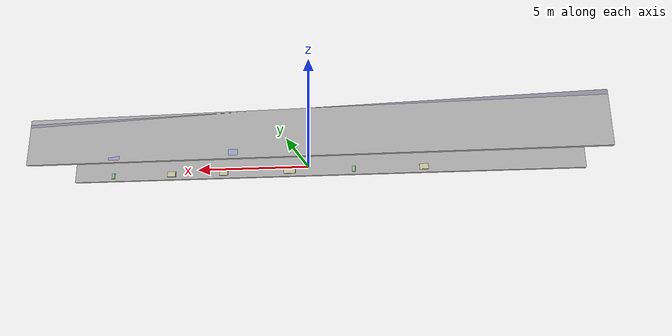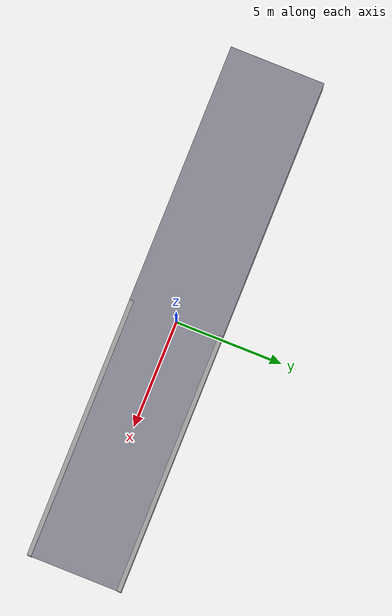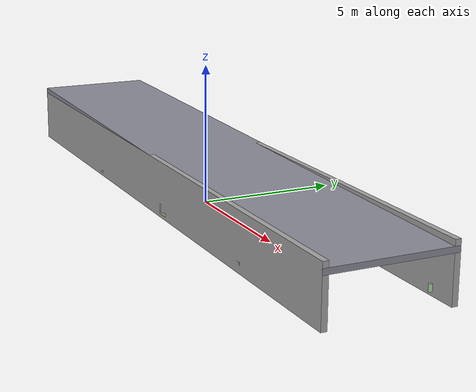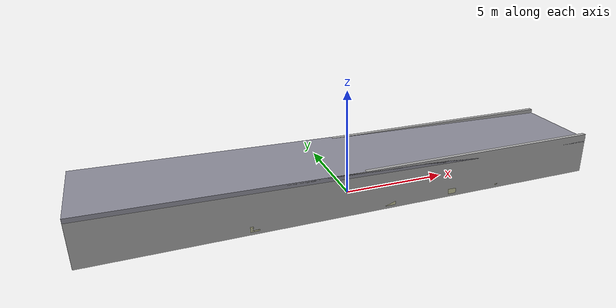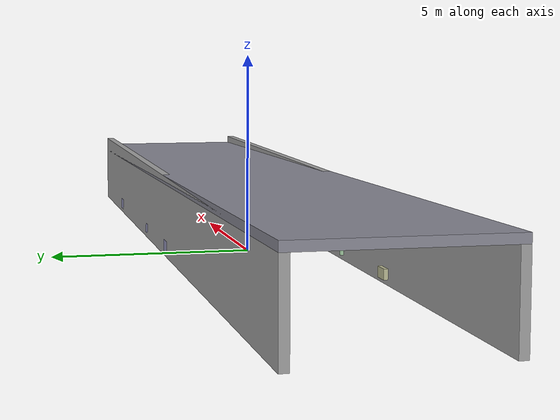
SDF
<?xml version="1.0"?>
<sdf version="1.7">
    <model name="culvert">
        <static>true</static>
        <link name="culvert_walls_link">
            <!-- 下侧墙（y < 0）：长 24m 沿 X，厚 0.2m 沿 Y，高 2m 沿 Z -->
            <collision name="lower_wall_collision">
                <pose>0 -2.1 1.0 0 0 0</pose>
                <geometry>
                    <box><size>24.0 0.2 2.0</size></box>
                </geometry>
            </collision>
            <visual name="lower_wall_visual">
                <pose>0 -2.1 1.0 0 0 0</pose>
                <geometry>
                    <box><size>24.0 0.2 2.0</size></box>
                </geometry>
                <material>
                    <ambient>0.35 0.35 0.35 1</ambient>
                    <diffuse>0.65 0.65 0.65 1</diffuse>
                </material>
            </visual>

            <!-- 上侧墙（y > 0）：与下侧墙对称，中间净宽 4m -->
            <collision name="upper_wall_collision">
                <pose>0 2.1 1.0 0 0 0</pose>
                <geometry>
                    <box><size>24.0 0.2 2.0</size></box>
                </geometry>
            </collision>
            <visual name="upper_wall_visual">
                <pose>0 2.1 1.0 0 0 0</pose>
                <geometry>
                    <box><size>24.0 0.2 2.0</size></box>
                </geometry>
                <material>
                    <ambient>0.35 0.35 0.35 1</ambient>
                    <diffuse>0.65 0.65 0.65 1</diffuse>
                </material>
            </visual>

            <!-- 连续倾斜顶板：内表面从入口 x=-12m 的 z=2.0m
                 下降到出口 x=12m 的 z=1.6m。 -->
            <collision name="sloped_ceiling_collision">
                <pose>0.001667 0 1.899986 0 0.016665 0</pose>
                <geometry>
                    <box><size>24.003333 4.4 0.2</size></box>
                </geometry>
            </collision>
            <visual name="sloped_ceiling_visual">
                <pose>0.001667 0 1.899986 0 0.016665 0</pose>
                <geometry>
                    <box><size>24.003333 4.4 0.2</size></box>
                </geometry>
                <material>
                    <ambient>0.30 0.30 0.32 1</ambient>
                    <diffuse>0.55 0.55 0.60 1</diffuse>
                </material>
            </visual>

            <!-- ================= 下侧墙特征物 ================= -->
            <!-- 下侧特征 1：盒状凸起，x=-5.0m，向通道内突出 0.10m -->
            <collision name="lower_feature_box_1_collision">
                <pose>-5.0 -2.05 0.25 0 0 0</pose>
                <geometry>
                    <box><size>0.40 0.30 0.25</size></box>
                </geometry>
            </collision>
            <visual name="lower_feature_box_1_visual">
                <pose>-5.0 -2.05 0.25 0 0 0</pose>
                <geometry>
                    <box><size>0.40 0.30 0.25</size></box>
                </geometry>
                <material>
                    <ambient>0.35 0.35 0.30 1</ambient>
                    <diffuse>0.75 0.75 0.60 1</diffuse>
                </material>
            </visual>

            <!-- 下侧特征 2：竖圆柱，x=-1.8m，半径 0.08m，向通道内突出 0.08m -->
            <collision name="lower_feature_cylinder_2_collision">
                <pose>-1.8 -2.0 0.25 0 0 0</pose>
                <geometry>
                    <cylinder><radius>0.08</radius><length>0.25</length></cylinder>
                </geometry>
            </collision>
            <visual name="lower_feature_cylinder_2_visual">
                <pose>-1.8 -2.0 0.25 0 0 0</pose>
                <geometry>
                    <cylinder><radius>0.08</radius><length>0.25</length></cylinder>
                </geometry>
                <material>
                    <ambient>0.30 0.35 0.30 1</ambient>
                    <diffuse>0.60 0.75 0.60 1</diffuse>
                </material>
            </visual>

            <!-- 下侧特征 3：盒状凸起，x=1.2m，向通道内突出 0.10m -->
            <collision name="lower_feature_box_3_collision">
                <pose>1.2 -2.05 0.30 0 0 0</pose>
                <geometry>
                    <box><size>0.55 0.30 0.35</size></box>
                </geometry>
            </collision>
            <visual name="lower_feature_box_3_visual">
                <pose>1.2 -2.05 0.30 0 0 0</pose>
                <geometry>
                    <box><size>0.55 0.30 0.35</size></box>
                </geometry>
                <material>
                    <ambient>0.35 0.35 0.30 1</ambient>
                    <diffuse>0.75 0.75 0.60 1</diffuse>
                </material>
            </visual>

            <!-- 下侧特征 4：盒状凸起，x=4.4m，向通道内突出 0.10m -->
            <collision name="lower_feature_box_4_collision">
                <pose>4.4 -2.05 0.25 0 0 0</pose>
                <geometry>
                    <box><size>0.40 0.30 0.25</size></box>
                </geometry>
            </collision>
            <visual name="lower_feature_box_4_visual">
                <pose>4.4 -2.05 0.25 0 0 0</pose>
                <geometry>
                    <box><size>0.40 0.30 0.25</size></box>
                </geometry>
                <material>
                    <ambient>0.35 0.35 0.30 1</ambient>
                    <diffuse>0.75 0.75 0.60 1</diffuse>
                </material>
            </visual>

            <!-- ================= 上侧墙特征物 ================= -->
            <!-- 上侧特征 1：竖圆柱，x=-3.8m，半径 0.08m，向通道内突出 0.08m -->
            <collision name="upper_feature_cylinder_1_collision">
                <pose>-3.8 2.0 0.25 0 0 0</pose>
                <geometry>
                    <cylinder><radius>0.08</radius><length>0.25</length></cylinder>
                </geometry>
            </collision>
            <visual name="upper_feature_cylinder_1_visual">
                <pose>-3.8 2.0 0.25 0 0 0</pose>
                <geometry>
                    <cylinder><radius>0.08</radius><length>0.25</length></cylinder>
                </geometry>
                <material>
                    <ambient>0.30 0.35 0.30 1</ambient>
                    <diffuse>0.60 0.75 0.60 1</diffuse>
                </material>
            </visual>

            <!-- 上侧特征 2：盒状凸起，x=-0.4m，向通道内突出 0.10m -->
            <collision name="upper_feature_box_2_collision">
                <pose>-0.4 2.05 0.25 0 0 0</pose>
                <geometry>
                    <box><size>0.50 0.30 0.30</size></box>
                </geometry>
            </collision>
            <visual name="upper_feature_box_2_visual">
                <pose>-0.4 2.05 0.25 0 0 0</pose>
                <geometry>
                    <box><size>0.50 0.30 0.30</size></box>
                </geometry>
                <material>
                    <ambient>0.30 0.30 0.35 1</ambient>
                    <diffuse>0.60 0.60 0.75 1</diffuse>
                </material>
            </visual>

            <!-- 上侧特征 3：盒状凸起，x=2.8m，向通道内突出 0.10m -->
            <collision name="upper_feature_box_3_collision">
                <pose>2.8 2.05 0.25 0 0 0</pose>
                <geometry>
                    <box><size>0.40 0.30 0.25</size></box>
                </geometry>
            </collision>
            <visual name="upper_feature_box_3_visual">
                <pose>2.8 2.05 0.25 0 0 0</pose>
                <geometry>
                    <box><size>0.40 0.30 0.25</size></box>
                </geometry>
                <material>
                    <ambient>0.30 0.30 0.35 1</ambient>
                    <diffuse>0.60 0.60 0.75 1</diffuse>
                </material>
            </visual>

            <!-- ================= 延长段特征物（x: 6.0 ~ 12.0） ================= -->
            <!-- 下侧延长特征 1：盒状凸起，x=7.0m，向通道内突出 0.10m -->
            <collision name="lower_feature_box_ext_1_collision">
                <pose>7.0 -2.05 0.25 0 0 0</pose>
                <geometry>
                    <box><size>0.40 0.30 0.25</size></box>
                </geometry>
            </collision>
            <visual name="lower_feature_box_ext_1_visual">
                <pose>7.0 -2.05 0.25 0 0 0</pose>
                <geometry>
                    <box><size>0.40 0.30 0.25</size></box>
                </geometry>
                <material>
                    <ambient>0.35 0.35 0.30 1</ambient>
                    <diffuse>0.75 0.75 0.60 1</diffuse>
                </material>
            </visual>

            <!-- 下侧延长特征 2：竖圆柱，x=10.0m，半径 0.08m，向通道内突出 0.08m -->
            <collision name="lower_feature_cylinder_ext_2_collision">
                <pose>10.0 -2.0 0.25 0 0 0</pose>
                <geometry>
                    <cylinder><radius>0.08</radius><length>0.25</length></cylinder>
                </geometry>
            </collision>
            <visual name="lower_feature_cylinder_ext_2_visual">
                <pose>10.0 -2.0 0.25 0 0 0</pose>
                <geometry>
                    <cylinder><radius>0.08</radius><length>0.25</length></cylinder>
                </geometry>
                <material>
                    <ambient>0.30 0.35 0.30 1</ambient>
                    <diffuse>0.60 0.75 0.60 1</diffuse>
                </material>
            </visual>

            <!-- 上侧延长特征 1：盒状凸起，x=8.0m，向通道内突出 0.10m -->
            <collision name="upper_feature_box_ext_1_collision">
                <pose>8.0 2.05 0.25 0 0 0</pose>
                <geometry>
                    <box><size>0.50 0.30 0.30</size></box>
                </geometry>
            </collision>
            <visual name="upper_feature_box_ext_1_visual">
                <pose>8.0 2.05 0.25 0 0 0</pose>
                <geometry>
                    <box><size>0.50 0.30 0.30</size></box>
                </geometry>
                <material>
                    <ambient>0.30 0.30 0.35 1</ambient>
                    <diffuse>0.60 0.60 0.75 1</diffuse>
                </material>
            </visual>

            <!-- 上侧延长特征 2：竖圆柱，x=11.0m，半径 0.08m，向通道内突出 0.08m -->
            <collision name="upper_feature_cylinder_ext_2_collision">
                <pose>11.0 2.0 0.25 0 0 0</pose>
                <geometry>
                    <cylinder><radius>0.08</radius><length>0.25</length></cylinder>
                </geometry>
            </collision>
            <visual name="upper_feature_cylinder_ext_2_visual">
                <pose>11.0 2.0 0.25 0 0 0</pose>
                <geometry>
                    <cylinder><radius>0.08</radius><length>0.25</length></cylinder>
                </geometry>
                <material>
                    <ambient>0.30 0.35 0.30 1</ambient>
                    <diffuse>0.60 0.75 0.60 1</diffuse>
                </material>
            </visual>

            <!-- 上侧特征 4：竖圆柱，x=5.0m，半径 0.08m，向通道内突出 0.08m -->
            <collision name="upper_feature_cylinder_4_collision">
                <pose>5.0 2.0 0.25 0 0 0</pose>
                <geometry>
                    <cylinder><radius>0.08</radius><length>0.25</length></cylinder>
                </geometry>
            </collision>
            <visual name="upper_feature_cylinder_4_visual">
                <pose>5.0 2.0 0.25 0 0 0</pose>
                <geometry>
                    <cylinder><radius>0.08</radius><length>0.25</length></cylinder>
                </geometry>
                <material>
                    <ambient>0.30 0.35 0.30 1</ambient>
                    <diffuse>0.60 0.75 0.60 1</diffuse>
                </material>
            </visual>
        </link>
    </model>
</sdf>
